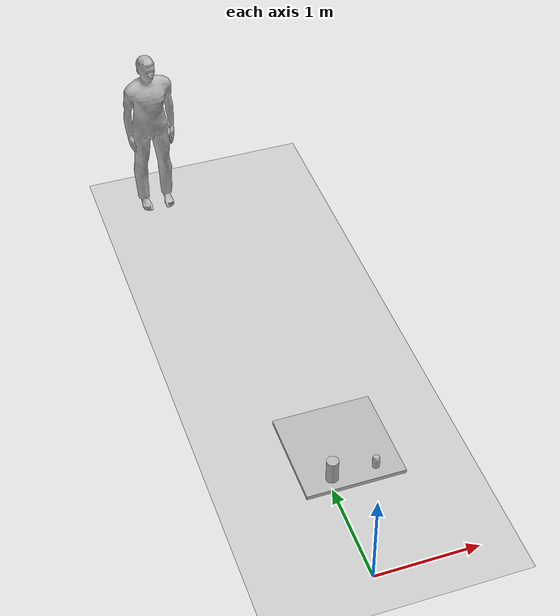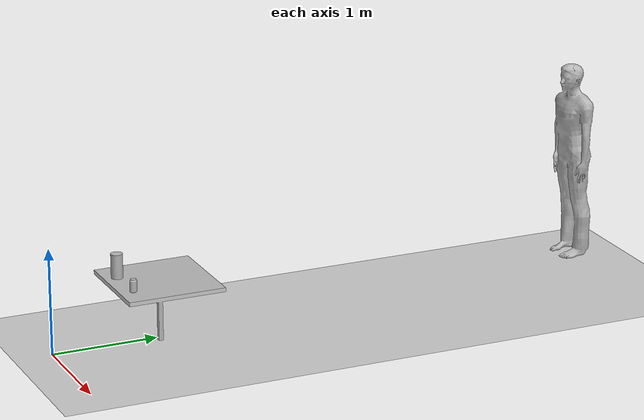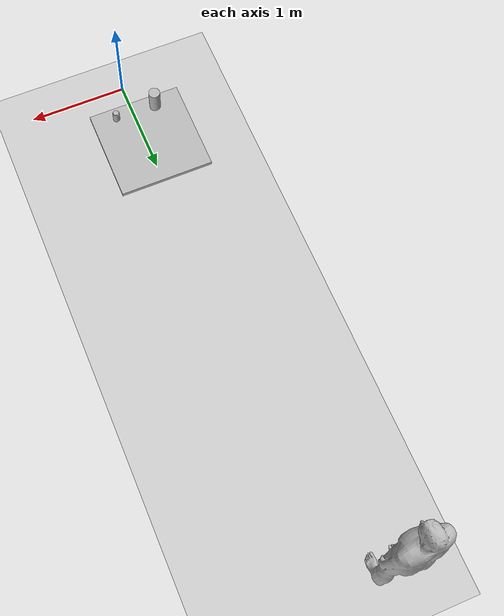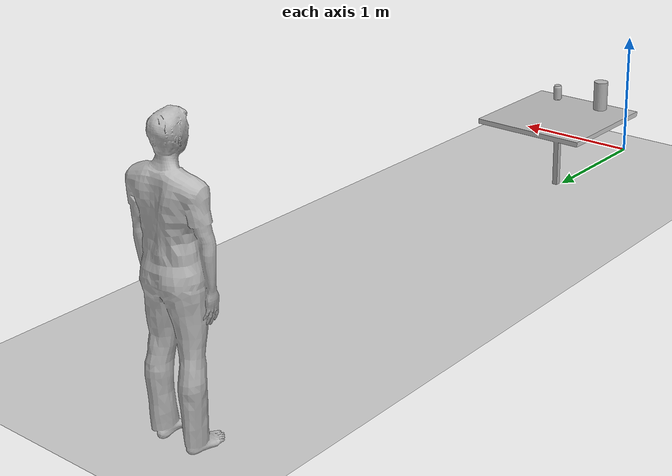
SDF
<sdf version="1.7">
 <world name="default">
  <light name="sun" type="directional">
   <pose>0 0 10 0 -0 0</pose>
   <diffuse>0.8 0.8 0.8 1</diffuse>
   <specular>0.2 0.2 0.2 1</specular>
   <attenuation>
    <range>1000</range>
    <constant>0.9</constant>
    <linear>0.01</linear>
    <quadratic>0.001</quadratic>
   </attenuation>
   <direction>-0.5 0.1 -0.9</direction>
   <spot><inner_angle>0</inner_angle><outer_angle>0</outer_angle><falloff>0</falloff></spot>
  </light>
  <model name="ground_plane">
   <static>1</static>
   <link name="link">
    <collision name="collision">
     <geometry><plane><normal>0 0 1</normal><size>100 100</size></plane></geometry>
     <surface>
      <contact><collide_bitmask>65535</collide_bitmask></contact>
      <friction><ode><mu>100</mu><mu2>50</mu2></ode></friction>
     </surface>
    </collision>
    <visual name="visual">
     <cast_shadows>0</cast_shadows>
     <geometry><plane><normal>0 0 1</normal><size>100 100</size></plane></geometry>
     <material>
      <script><uri>file://media/materials/scripts/gazebo.material</uri><name>Gazebo/Grey</name></script>
     </material>
    </visual>
   </link>
  </model>
  <gravity>0 0 -9.8</gravity>
  <magnetic_field>6e-06 2.3e-05 -4.2e-05</magnetic_field>
  <atmosphere type="adiabatic"/>
  <physics type="ode">
   <max_step_size>0.001</max_step_size>
   <real_time_factor>1</real_time_factor>
   <real_time_update_rate>1000</real_time_update_rate>
  </physics>
  <scene><ambient>0.4 0.4 0.4 1</ambient><background>0.7 0.7 0.7 1</background><shadows>1</shadows></scene>
  <spherical_coordinates>
   <surface_model>EARTH_WGS84</surface_model>
   <latitude_deg>0</latitude_deg>
   <longitude_deg>0</longitude_deg>
   <elevation>0</elevation>
   <heading_deg>0</heading_deg>
  </spherical_coordinates>
  <model name="MyCafeTable">
   <model name="cafe_table">
    <static>1</static>
    <link name="link">
     <collision name="surface">
      <pose>0 0 0.755 0 -0 0</pose>
      <geometry><box><size>0.913 0.913 0.04</size></box></geometry>
     </collision>
     <collision name="column">
      <pose>0 0 0.37 0 -0 0</pose>
      <geometry><box><size>0.042 0.042 0.74</size></box></geometry>
     </collision>
     <collision name="base">
      <pose>0 0 0.02 0 -0 0</pose>
      <geometry><box><size>0.56 0.56 0.04</size></box></geometry>
     </collision>
     <visual name="visual">
      <geometry><mesh><uri>model://cafe_table/meshes/cafe_table.dae</uri></mesh></geometry>
     </visual>
    </link>
    <pose>4e-06 0 0 0 -0 0</pose>
   </model>
   <static>0</static>
   <pose>0.049138 1.01633 -0.192198 0 -0 0</pose>
  </model>
  <model name="MyBeer">
   <model name="beer">
    <link name="link">
     <pose>0 0 0.115 0 -0 0</pose>
     <inertial>
      <mass>0.39</mass>
      <inertia><ixx>0.00058</ixx><ixy>0</ixy><ixz>0</ixz><iyy>0.00058</iyy><iyz>0</iyz><izz>0.00019</izz></inertia>
     </inertial>
     <collision name="collision">
      <geometry><cylinder><radius>0.055</radius><length>0.23</length></cylinder></geometry>
     </collision>
     <visual name="visual">
      <geometry><cylinder><radius>0.055</radius><length>0.23</length></cylinder></geometry>
      <material>
       <script>
        <uri>model://beer/materials/scripts</uri>
        <uri>model://beer/materials/textures</uri>
        <name>Beer/Diffuse</name>
       </script>
      </material>
     </visual>
    </link>
    <pose>-2e-06 -0 0 0 -0 0</pose>
   </model>
   <static>0</static>
   <pose>-0.134718 0.681186 0.582798 2.7e-05 0.000108 0.000494</pose>
  </model>
  <model name="MyStandingPerson">
   <model name="person_standing">
    <link name="link">
     <inertial>
      <pose>0 -0.1 0.95 0 -0 0</pose>
      <mass>80</mass>
      <inertia><ixx>24.88</ixx><ixy>0</ixy><ixz>0</ixz><iyy>25.73</iyy><iyz>0</iyz><izz>2.48</izz></inertia>
     </inertial>
     <collision name="bottom">
      <pose>0 -0.1 0.01 0 -0 0</pose>
      <geometry><box><size>0.5 0.35 0.02</size></box></geometry>
     </collision>
     <collision name="person">
      <pose>0 0 0.02 0.04 -0 0</pose>
      <geometry><mesh><uri>model://person_standing/meshes/standing.dae</uri></mesh></geometry>
     </collision>
     <visual name="visual">
      <pose>0 0 0.02 0.04 -0 0</pose>
      <geometry><mesh><uri>model://person_standing/meshes/standing.dae</uri></mesh></geometry>
     </visual>
    </link>
    <pose>0 -4e-06 0 0 -0 0</pose>
   </model>
   <static>0</static>
   <pose>-0.423564 5.56587 0 1e-06 -1e-06 -0.000404</pose>
  </model>
  <model name="MyCoe">
   <model name="coke_can">
    <link name="link">
     <inertial>
      <pose>0 0 0.06 0 -0 0</pose>
      <mass>0.1</mass>
      <inertia>
       <ixx>0.00055575</ixx>
       <ixy>0</ixy>
       <ixz>0</ixz>
       <iyy>0.00055575</iyy>
       <iyz>0</iyz>
       <izz>0.0001755</izz>
      </inertia>
     </inertial>
     <collision name="collision">
      <pose>0.003937 0.004724 -0.18 0 -0 0</pose>
      <geometry><mesh><uri>model://coke_can/meshes/coke_can.dae</uri></mesh></geometry>
      <surface>
       <friction><ode><mu>1</mu><mu2>1</mu2></ode></friction>
       <contact><ode><kp>1e+07</kp><kd>1</kd><min_depth>0.001</min_depth><max_vel>0.1</max_vel></ode></contact>
      </surface>
     </collision>
     <visual name="visual">
      <pose>0.003937 0.004724 -0.18 0 -0 0</pose>
      <geometry><mesh><uri>model://coke_can/meshes/coke_can.dae</uri></mesh></geometry>
     </visual>
    </link>
   </model>
   <static>0</static>
   <pose>0.270899 0.683831 0.579934 -0.015206 -0.00159 1.9e-05</pose>
  </model>
 </world>
</sdf>
